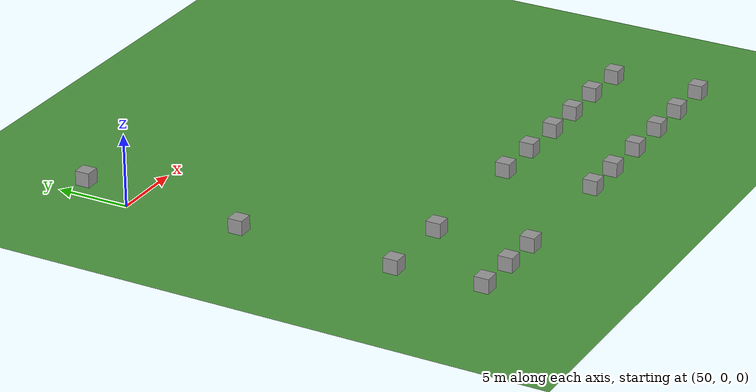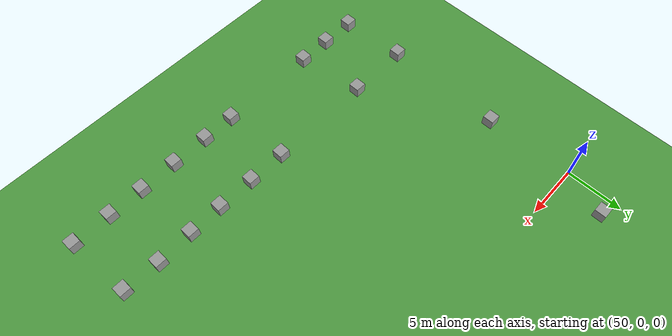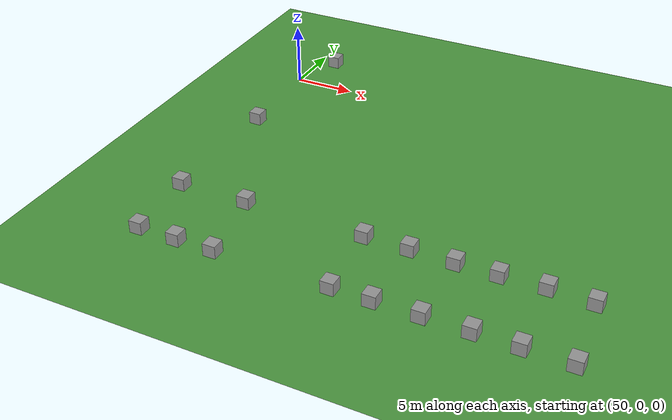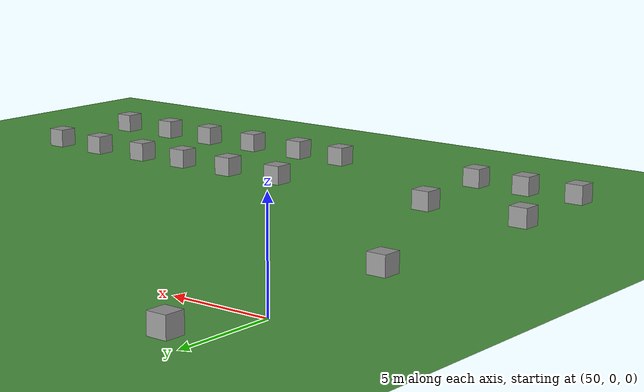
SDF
<sdf version="1.4">
 <world name="default">
  <model name="ground_plane">
   <static>1</static>
   <link name="link">
    <collision name="collision">
     <geometry><plane><normal>0 0 1</normal><size>10000 10000</size></plane></geometry>
     <surface><friction><ode><mu>100</mu><mu2>50</mu2></ode></friction></surface>
    </collision>
    <visual name="visual">
     <cast_shadows>0</cast_shadows>
     <geometry><plane><normal>0 0 1</normal><size>10000 10000</size></plane></geometry>
     <material>
      <script>
       <uri>model://ds_grass_background/materials/scripts</uri>
       <uri>model://ds_grass_background/materials/textures</uri>
       <name>GrassBackground</name>
      </script>
     </material>
    </visual>
    <velocity_decay><linear>0</linear><angular>0</angular></velocity_decay>
   </link>
  </model>
  <model name="unit_box_12">
   <pose>50.4754 -8 0.5 -0 -0 -0</pose>
   <link name="link">
    <inertial>
     <mass>1</mass>
     <inertia><ixx>1</ixx><ixy>0</ixy><ixz>0</ixz><iyy>1</iyy><iyz>0</iyz><izz>1</izz></inertia>
    </inertial>
    <collision name="collision"><geometry><box><size>2.39697 3.66646 1</size></box></geometry></collision>
    <visual name="visual">
     <geometry><box><size>1 1 1</size></box></geometry>
     <material>
      <script><uri>file://media/materials/scripts/gazebo.material</uri><name>Gazebo/Grey</name></script>
     </material>
    </visual>
    <velocity_decay><linear>0</linear><angular>0</angular></velocity_decay>
   </link>
   <static>0</static>
  </model>
  <model name="unit_box_26">
   <pose>50.4099 -19 0.5 0 -0 0</pose>
   <link name="link">
    <inertial>
     <mass>1</mass>
     <inertia><ixx>1</ixx><ixy>0</ixy><ixz>0</ixz><iyy>1</iyy><iyz>0</iyz><izz>1</izz></inertia>
    </inertial>
    <collision name="collision"><geometry><box><size>1.96142 3.28622 1</size></box></geometry></collision>
    <visual name="visual">
     <geometry><box><size>1 1 1</size></box></geometry>
     <material>
      <script><uri>file://media/materials/scripts/gazebo.material</uri><name>Gazebo/Grey</name></script>
     </material>
    </visual>
    <velocity_decay><linear>0</linear><angular>0</angular></velocity_decay>
   </link>
   <static>0</static>
  </model>
  <model name="unit_box_27">
   <pose>56 -19 0.5 -0 -0 -0</pose>
   <link name="link">
    <inertial>
     <mass>1</mass>
     <inertia><ixx>1</ixx><ixy>0</ixy><ixz>0</ixz><iyy>1</iyy><iyz>0</iyz><izz>1</izz></inertia>
    </inertial>
    <collision name="collision"><geometry><box><size>1.74983 3.29819 1</size></box></geometry></collision>
    <visual name="visual">
     <geometry><box><size>1 1 1</size></box></geometry>
     <material>
      <script><uri>file://media/materials/scripts/gazebo.material</uri><name>Gazebo/Grey</name></script>
     </material>
    </visual>
    <velocity_decay><linear>0</linear><angular>0</angular></velocity_decay>
   </link>
   <static>0</static>
  </model>
  <model name="unit_box_30">
   <pose>65.5495 -19 0.5 -0 -0 -0</pose>
   <link name="link">
    <inertial>
     <mass>1</mass>
     <inertia><ixx>1</ixx><ixy>0</ixy><ixz>0</ixz><iyy>1</iyy><iyz>0</iyz><izz>1</izz></inertia>
    </inertial>
    <collision name="collision"><geometry><box><size>2.13502 3.10908 1</size></box></geometry></collision>
    <visual name="visual">
     <geometry><box><size>1 1 1</size></box></geometry>
     <material>
      <script><uri>file://media/materials/scripts/gazebo.material</uri><name>Gazebo/Grey</name></script>
     </material>
    </visual>
    <velocity_decay><linear>0</linear><angular>0</angular></velocity_decay>
   </link>
   <static>0</static>
  </model>
  <model name="unit_box_31">
   <pose>69 -19 0.5 0 -0 0</pose>
   <link name="link">
    <inertial>
     <mass>1</mass>
     <inertia><ixx>1</ixx><ixy>0</ixy><ixz>0</ixz><iyy>1</iyy><iyz>0</iyz><izz>1</izz></inertia>
    </inertial>
    <collision name="collision"><geometry><box><size>2.14107 3.18963 1</size></box></geometry></collision>
    <visual name="visual">
     <geometry><box><size>1 1 1</size></box></geometry>
     <material>
      <script><uri>file://media/materials/scripts/gazebo.material</uri><name>Gazebo/Grey</name></script>
     </material>
    </visual>
    <velocity_decay><linear>0</linear><angular>0</angular></velocity_decay>
   </link>
   <static>0</static>
  </model>
  <model name="unit_box_32">
   <pose>72.3767 -19.0345 0.5 0 -0 0</pose>
   <link name="link">
    <inertial>
     <mass>1</mass>
     <inertia><ixx>1</ixx><ixy>0</ixy><ixz>0</ixz><iyy>1</iyy><iyz>0</iyz><izz>1</izz></inertia>
    </inertial>
    <collision name="collision"><geometry><box><size>1.96872 3.07442 1</size></box></geometry></collision>
    <visual name="visual">
     <geometry><box><size>1 1 1</size></box></geometry>
     <material>
      <script><uri>file://media/materials/scripts/gazebo.material</uri><name>Gazebo/Grey</name></script>
     </material>
    </visual>
    <velocity_decay><linear>0</linear><angular>0</angular></velocity_decay>
   </link>
   <static>0</static>
  </model>
  <model name="unit_box_33">
   <pose>75.4529 -19 0.5 -0 -0 -0</pose>
   <link name="link">
    <inertial>
     <mass>1</mass>
     <inertia><ixx>1</ixx><ixy>0</ixy><ixz>0</ixz><iyy>1</iyy><iyz>0</iyz><izz>1</izz></inertia>
    </inertial>
    <collision name="collision"><geometry><box><size>2.09562 3.27064 1</size></box></geometry></collision>
    <visual name="visual">
     <geometry><box><size>1 1 1</size></box></geometry>
     <material>
      <script><uri>file://media/materials/scripts/gazebo.material</uri><name>Gazebo/Grey</name></script>
     </material>
    </visual>
    <velocity_decay><linear>0</linear><angular>0</angular></velocity_decay>
   </link>
   <static>0</static>
  </model>
  <model name="unit_box_34">
   <pose>78.7478 -18.8757 0.5 -0 -0 -0</pose>
   <link name="link">
    <inertial>
     <mass>1</mass>
     <inertia><ixx>1</ixx><ixy>0</ixy><ixz>0</ixz><iyy>1</iyy><iyz>0</iyz><izz>1</izz></inertia>
    </inertial>
    <collision name="collision"><geometry><box><size>2.09369 3.25559 1</size></box></geometry></collision>
    <visual name="visual">
     <geometry><box><size>1 1 1</size></box></geometry>
     <material>
      <script><uri>file://media/materials/scripts/gazebo.material</uri><name>Gazebo/Grey</name></script>
     </material>
    </visual>
    <velocity_decay><linear>0</linear><angular>0</angular></velocity_decay>
   </link>
   <static>0</static>
  </model>
  <model name="unit_box_35">
   <pose>82 -19 0.5 -0 -0 -0</pose>
   <link name="link">
    <inertial>
     <mass>1</mass>
     <inertia><ixx>1</ixx><ixy>0</ixy><ixz>0</ixz><iyy>1</iyy><iyz>0</iyz><izz>1</izz></inertia>
    </inertial>
    <collision name="collision"><geometry><box><size>2.18584 3.57554 1</size></box></geometry></collision>
    <visual name="visual">
     <geometry><box><size>1 1 1</size></box></geometry>
     <material>
      <script><uri>file://media/materials/scripts/gazebo.material</uri><name>Gazebo/Grey</name></script>
     </material>
    </visual>
    <velocity_decay><linear>0</linear><angular>0</angular></velocity_decay>
   </link>
   <static>0</static>
  </model>
  <model name="unit_box_50">
   <pose>51.5836 4 0.499995 5e-06 -0 0</pose>
   <link name="link">
    <inertial>
     <mass>1</mass>
     <inertia><ixx>1</ixx><ixy>0</ixy><ixz>0</ixz><iyy>1</iyy><iyz>0</iyz><izz>1</izz></inertia>
    </inertial>
    <collision name="collision"><geometry><box><size>5.01757 1.96697 1</size></box></geometry></collision>
    <visual name="visual">
     <geometry><box><size>1 1 1</size></box></geometry>
     <material>
      <script><uri>file://media/materials/scripts/gazebo.material</uri><name>Gazebo/Grey</name></script>
     </material>
    </visual>
    <velocity_decay><linear>0</linear><angular>0</angular></velocity_decay>
   </link>
   <static>0</static>
  </model>
  <model name="unit_box_64">
   <pose>50.8849 -24.9687 0.499995 0 -4e-06 0</pose>
   <link name="link">
    <inertial>
     <mass>1</mass>
     <inertia><ixx>1</ixx><ixy>0</ixy><ixz>0</ixz><iyy>1</iyy><iyz>0</iyz><izz>1</izz></inertia>
    </inertial>
    <collision name="collision"><geometry><box><size>2.26991 4.05663 1</size></box></geometry></collision>
    <visual name="visual">
     <geometry><box><size>1 1 1</size></box></geometry>
     <material>
      <script><uri>file://media/materials/scripts/gazebo.material</uri><name>Gazebo/Grey</name></script>
     </material>
    </visual>
    <velocity_decay><linear>0</linear><angular>0</angular></velocity_decay>
   </link>
   <static>0</static>
  </model>
  <model name="unit_box_65">
   <pose>54 -25 0.5 0 -0 0</pose>
   <link name="link">
    <inertial>
     <mass>1</mass>
     <inertia><ixx>1</ixx><ixy>0</ixy><ixz>0</ixz><iyy>1</iyy><iyz>0</iyz><izz>1</izz></inertia>
    </inertial>
    <collision name="collision"><geometry><box><size>1.99036 4.13971 1</size></box></geometry></collision>
    <visual name="visual">
     <geometry><box><size>1 1 1</size></box></geometry>
     <material>
      <script><uri>file://media/materials/scripts/gazebo.material</uri><name>Gazebo/Grey</name></script>
     </material>
    </visual>
    <velocity_decay><linear>0</linear><angular>0</angular></velocity_decay>
   </link>
   <static>0</static>
  </model>
  <model name="unit_box_66">
   <pose>57 -25 0.5 -0 -0 -0</pose>
   <link name="link">
    <inertial>
     <mass>1</mass>
     <inertia><ixx>1</ixx><ixy>0</ixy><ixz>0</ixz><iyy>1</iyy><iyz>0</iyz><izz>1</izz></inertia>
    </inertial>
    <collision name="collision"><geometry><box><size>2.22613 4.15316 1</size></box></geometry></collision>
    <visual name="visual">
     <geometry><box><size>1 1 1</size></box></geometry>
     <material>
      <script><uri>file://media/materials/scripts/gazebo.material</uri><name>Gazebo/Grey</name></script>
     </material>
    </visual>
    <velocity_decay><linear>0</linear><angular>0</angular></velocity_decay>
   </link>
   <static>0</static>
  </model>
  <model name="unit_box_69">
   <pose>66 -25 0.5 -0 -0 -0</pose>
   <link name="link">
    <inertial>
     <mass>1</mass>
     <inertia><ixx>1</ixx><ixy>0</ixy><ixz>0</ixz><iyy>1</iyy><iyz>0</iyz><izz>1</izz></inertia>
    </inertial>
    <collision name="collision"><geometry><box><size>2.31348 3.99722 1</size></box></geometry></collision>
    <visual name="visual">
     <geometry><box><size>1 1 1</size></box></geometry>
     <material>
      <script><uri>file://media/materials/scripts/gazebo.material</uri><name>Gazebo/Grey</name></script>
     </material>
    </visual>
    <velocity_decay><linear>0</linear><angular>0</angular></velocity_decay>
   </link>
   <static>0</static>
  </model>
  <model name="unit_box_70">
   <pose>69 -25 0.5 -0 -0 -0</pose>
   <link name="link">
    <inertial>
     <mass>1</mass>
     <inertia><ixx>1</ixx><ixy>0</ixy><ixz>0</ixz><iyy>1</iyy><iyz>0</iyz><izz>1</izz></inertia>
    </inertial>
    <collision name="collision"><geometry><box><size>2.40017 3.81311 1</size></box></geometry></collision>
    <visual name="visual">
     <geometry><box><size>1 1 1</size></box></geometry>
     <material>
      <script><uri>file://media/materials/scripts/gazebo.material</uri><name>Gazebo/Grey</name></script>
     </material>
    </visual>
    <velocity_decay><linear>0</linear><angular>0</angular></velocity_decay>
   </link>
   <static>0</static>
  </model>
  <model name="unit_box_71">
   <pose>72.4115 -25 0.5 0 -0 0</pose>
   <link name="link">
    <inertial>
     <mass>1</mass>
     <inertia><ixx>1</ixx><ixy>0</ixy><ixz>0</ixz><iyy>1</iyy><iyz>0</iyz><izz>1</izz></inertia>
    </inertial>
    <collision name="collision"><geometry><box><size>2.56922 3.83321 1</size></box></geometry></collision>
    <visual name="visual">
     <geometry><box><size>1 1 1</size></box></geometry>
     <material>
      <script><uri>file://media/materials/scripts/gazebo.material</uri><name>Gazebo/Grey</name></script>
     </material>
    </visual>
    <velocity_decay><linear>0</linear><angular>0</angular></velocity_decay>
   </link>
   <static>0</static>
  </model>
  <model name="unit_box_72">
   <pose>75.8094 -24.9919 0.499998 0 2e-06 0</pose>
   <link name="link">
    <inertial>
     <mass>1</mass>
     <inertia><ixx>1</ixx><ixy>0</ixy><ixz>0</ixz><iyy>1</iyy><iyz>0</iyz><izz>1</izz></inertia>
    </inertial>
    <collision name="collision"><geometry><box><size>2.49447 3.92326 1</size></box></geometry></collision>
    <visual name="visual">
     <geometry><box><size>1 1 1</size></box></geometry>
     <material>
      <script><uri>file://media/materials/scripts/gazebo.material</uri><name>Gazebo/Grey</name></script>
     </material>
    </visual>
    <velocity_decay><linear>0</linear><angular>0</angular></velocity_decay>
   </link>
   <static>0</static>
  </model>
  <model name="unit_box_73">
   <pose>79 -25 0.5 -0 -0 -0</pose>
   <link name="link">
    <inertial>
     <mass>1</mass>
     <inertia><ixx>1</ixx><ixy>0</ixy><ixz>0</ixz><iyy>1</iyy><iyz>0</iyz><izz>1</izz></inertia>
    </inertial>
    <collision name="collision"><geometry><box><size>2.48223 4.00001 1</size></box></geometry></collision>
    <visual name="visual">
     <geometry><box><size>1 1 1</size></box></geometry>
     <material>
      <script><uri>file://media/materials/scripts/gazebo.material</uri><name>Gazebo/Grey</name></script>
     </material>
    </visual>
    <velocity_decay><linear>0</linear><angular>0</angular></velocity_decay>
   </link>
   <static>0</static>
  </model>
  <model name="unit_box_74">
   <pose>82.4499 -25 0.5 0 -0 0</pose>
   <link name="link">
    <inertial>
     <mass>1</mass>
     <inertia><ixx>1</ixx><ixy>0</ixy><ixz>0</ixz><iyy>1</iyy><iyz>0</iyz><izz>1</izz></inertia>
    </inertial>
    <collision name="collision"><geometry><box><size>2.35886 3.88662 1</size></box></geometry></collision>
    <visual name="visual">
     <geometry><box><size>1 1 1</size></box></geometry>
     <material>
      <script><uri>file://media/materials/scripts/gazebo.material</uri><name>Gazebo/Grey</name></script>
     </material>
    </visual>
    <velocity_decay><linear>0</linear><angular>0</angular></velocity_decay>
   </link>
   <static>0</static>
  </model>
 </world>
</sdf>
